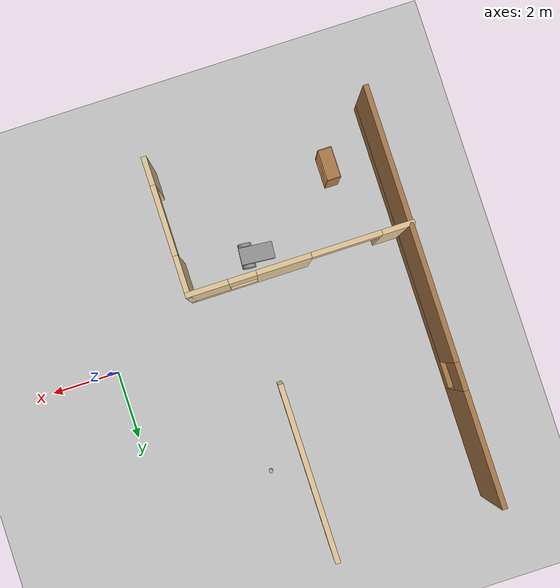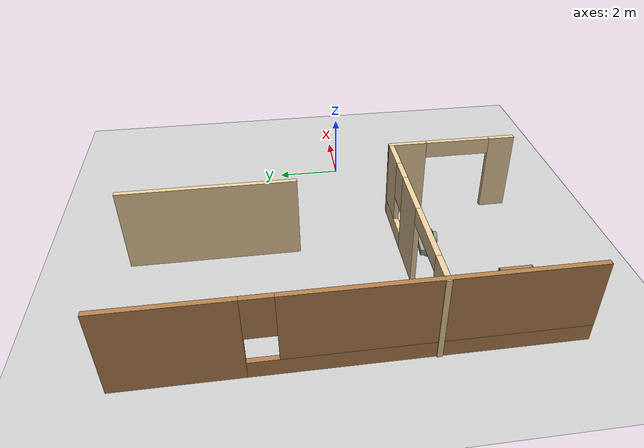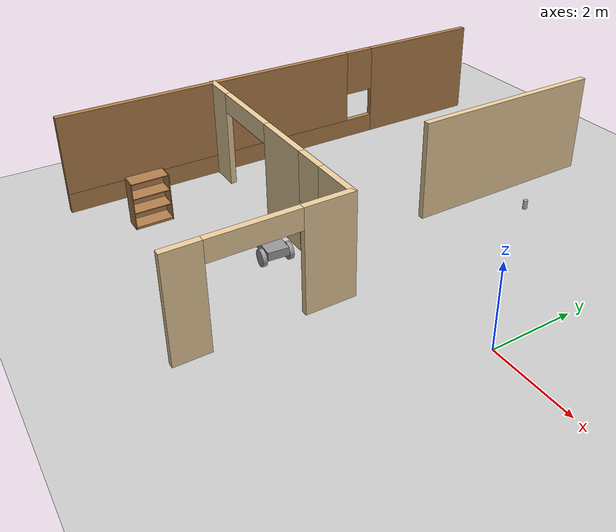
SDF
<sdf version="1.6">
 <world name="default">
  <model name="ground_plane">
   <static>1</static>
   <link name="link">
    <collision name="collision">
     <geometry><plane><normal>0 0 1</normal><size>100 100</size></plane></geometry>
     <surface><friction><ode><mu>100</mu><mu2>50</mu2></ode></friction></surface>
    </collision>
    <visual name="visual">
     <cast_shadows>0</cast_shadows>
     <geometry><plane><normal>0 0 1</normal><size>100 100</size></plane></geometry>
     <material>
      <script><uri>file://media/materials/scripts/gazebo.material</uri><name>Gazebo/Grey</name></script>
     </material>
    </visual>
   </link>
  </model>
  <model name="beer">
   <link name="link">
    <pose>0 0 0.115 0 -0 0</pose>
    <inertial>
     <mass>0.39</mass>
     <inertia><ixx>0.00058</ixx><ixy>0</ixy><ixz>0</ixz><iyy>0.00058</iyy><iyz>0</iyz><izz>0.00019</izz></inertia>
    </inertial>
    <collision name="collision">
     <geometry><cylinder><radius>0.055</radius><length>0.23</length></cylinder></geometry>
    </collision>
    <visual name="visual">
     <geometry><cylinder><radius>0.055</radius><length>0.23</length></cylinder></geometry>
     <material>
      <script>
       <uri>model://beer/materials/scripts</uri>
       <uri>model://beer/materials/textures</uri>
       <name>Beer/Diffuse</name>
      </script>
     </material>
    </visual>
   </link>
   <pose>-3.40388 4.09892 -2e-06 0 0 -9e-06</pose>
  </model>
  <model name="bookshelf">
   <link name="link">
    <pose>0 0 0 0 -0 1.5707</pose>
    <inertial>
     <mass>1</mass>
     <inertia><ixx>1</ixx><ixy>0</ixy><ixz>0</ixz><iyy>1</iyy><iyz>0</iyz><izz>1</izz></inertia>
    </inertial>
    <visual name="visual1">
     <pose>0 0.005 0.6 0 -0 0</pose>
     <geometry><box><size>0.9 0.01 1.2</size></box></geometry>
     <material>
      <script><uri>file://media/materials/scripts/gazebo.material</uri><name>Gazebo/Wood</name></script>
      <shader type="pixel"><normal_map>__default__</normal_map></shader>
      <ambient>1 1 1 1</ambient>
      <diffuse>1 1 1 1</diffuse>
      <specular>0.2 0.2 0.2 1</specular>
      <emissive>0 0 0 1</emissive>
     </material>
    </visual>
    <visual name="visual2">
     <pose>0.45 -0.195 0.6 0 -0 0</pose>
     <geometry><box><size>0.02 0.4 1.2</size></box></geometry>
     <material>
      <script><uri>file://media/materials/scripts/gazebo.material</uri><name>Gazebo/Wood</name></script>
      <shader type="pixel"><normal_map>__default__</normal_map></shader>
      <ambient>1 1 1 1</ambient>
      <diffuse>1 1 1 1</diffuse>
      <specular>0.2 0.2 0.2 1</specular>
      <emissive>0 0 0 1</emissive>
     </material>
    </visual>
    <visual name="visual3">
     <pose>-0.45 -0.195 0.6 0 -0 0</pose>
     <geometry><box><size>0.02 0.4 1.2</size></box></geometry>
     <material>
      <script><uri>file://media/materials/scripts/gazebo.material</uri><name>Gazebo/Wood</name></script>
      <shader type="pixel"><normal_map>__default__</normal_map></shader>
      <ambient>1 1 1 1</ambient>
      <diffuse>1 1 1 1</diffuse>
      <specular>0.2 0.2 0.2 1</specular>
      <emissive>0 0 0 1</emissive>
     </material>
    </visual>
    <visual name="visual4">
     <pose>0 -0.195 0.03 0 -0 0</pose>
     <geometry><box><size>0.88 0.4 0.06</size></box></geometry>
     <material>
      <script><uri>file://media/materials/scripts/gazebo.material</uri><name>Gazebo/Wood</name></script>
      <shader type="pixel"><normal_map>__default__</normal_map></shader>
      <ambient>1 1 1 1</ambient>
      <diffuse>1 1 1 1</diffuse>
      <specular>0.2 0.2 0.2 1</specular>
      <emissive>0 0 0 1</emissive>
     </material>
    </visual>
    <visual name="visual5">
     <pose>0 -0.195 1.19 0 -0 0</pose>
     <geometry><box><size>0.88 0.4 0.02</size></box></geometry>
     <material>
      <script><uri>file://media/materials/scripts/gazebo.material</uri><name>Gazebo/Wood</name></script>
      <shader type="pixel"><normal_map>__default__</normal_map></shader>
      <ambient>1 1 1 1</ambient>
      <diffuse>1 1 1 1</diffuse>
      <specular>0.2 0.2 0.2 1</specular>
      <emissive>0 0 0 1</emissive>
     </material>
    </visual>
    <visual name="visual6">
     <pose>0 -0.195 0.43 0 -0 0</pose>
     <geometry><box><size>0.88 0.4 0.02</size></box></geometry>
     <material>
      <script><uri>file://media/materials/scripts/gazebo.material</uri><name>Gazebo/Wood</name></script>
      <shader type="pixel"><normal_map>__default__</normal_map></shader>
      <ambient>1 1 1 1</ambient>
      <diffuse>1 1 1 1</diffuse>
      <specular>0.2 0.2 0.2 1</specular>
      <emissive>0 0 0 1</emissive>
     </material>
    </visual>
    <visual name="visual7">
     <pose>0 -0.195 0.8 0 -0 0</pose>
     <geometry><box><size>0.88 0.4 0.02</size></box></geometry>
     <material>
      <script><uri>file://media/materials/scripts/gazebo.material</uri><name>Gazebo/Wood</name></script>
      <shader type="pixel"><normal_map>__default__</normal_map></shader>
      <ambient>1 1 1 1</ambient>
      <diffuse>1 1 1 1</diffuse>
      <specular>0.2 0.2 0.2 1</specular>
      <emissive>0 0 0 1</emissive>
     </material>
    </visual>
    <collision name="back">
     <pose>0 0.005 0.6 0 -0 0</pose>
     <geometry><box><size>0.9 0.01 1.2</size></box></geometry>
     <surface>
      <friction>
       <ode><mu>1</mu><mu2>1</mu2><fdir1>0 0 0</fdir1><slip1>0</slip1><slip2>0</slip2></ode>
       <torsional>
        <coefficient>1</coefficient>
        <patch_radius>0</patch_radius>
        <surface_radius>0</surface_radius>
        <use_patch_radius>1</use_patch_radius>
        <ode><slip>0</slip></ode>
       </torsional>
      </friction>
      <bounce><restitution_coefficient>0</restitution_coefficient><threshold>1e+06</threshold></bounce>
      <contact>
       <collide_without_contact>0</collide_without_contact>
       <collide_without_contact_bitmask>1</collide_without_contact_bitmask>
       <collide_bitmask>1</collide_bitmask>
       <ode>
        <soft_cfm>0</soft_cfm>
        <soft_erp>0.2</soft_erp>
        <kp>1e+13</kp>
        <kd>1</kd>
        <max_vel>0.01</max_vel>
        <min_depth>0</min_depth>
       </ode>
       <bullet>
        <split_impulse>1</split_impulse>
        <split_impulse_penetration_threshold>-0.01</split_impulse_penetration_threshold>
        <soft_cfm>0</soft_cfm>
        <soft_erp>0.2</soft_erp>
        <kp>1e+13</kp>
        <kd>1</kd>
       </bullet>
      </contact>
     </surface>
    </collision>
    <collision name="left_side">
     <pose>0.45 -0.195 0.6 0 -0 0</pose>
     <geometry><box><size>0.02 0.4 1.2</size></box></geometry>
     <surface>
      <friction>
       <ode><mu>1</mu><mu2>1</mu2><fdir1>0 0 0</fdir1><slip1>0</slip1><slip2>0</slip2></ode>
       <torsional>
        <coefficient>1</coefficient>
        <patch_radius>0</patch_radius>
        <surface_radius>0</surface_radius>
        <use_patch_radius>1</use_patch_radius>
        <ode><slip>0</slip></ode>
       </torsional>
      </friction>
      <bounce><restitution_coefficient>0</restitution_coefficient><threshold>1e+06</threshold></bounce>
      <contact>
       <collide_without_contact>0</collide_without_contact>
       <collide_without_contact_bitmask>1</collide_without_contact_bitmask>
       <collide_bitmask>1</collide_bitmask>
       <ode>
        <soft_cfm>0</soft_cfm>
        <soft_erp>0.2</soft_erp>
        <kp>1e+13</kp>
        <kd>1</kd>
        <max_vel>0.01</max_vel>
        <min_depth>0</min_depth>
       </ode>
       <bullet>
        <split_impulse>1</split_impulse>
        <split_impulse_penetration_threshold>-0.01</split_impulse_penetration_threshold>
        <soft_cfm>0</soft_cfm>
        <soft_erp>0.2</soft_erp>
        <kp>1e+13</kp>
        <kd>1</kd>
       </bullet>
      </contact>
     </surface>
    </collision>
    <collision name="right_side">
     <pose>-0.45 -0.195 0.6 0 -0 0</pose>
     <geometry><box><size>0.02 0.4 1.2</size></box></geometry>
     <surface>
      <friction>
       <ode><mu>1</mu><mu2>1</mu2><fdir1>0 0 0</fdir1><slip1>0</slip1><slip2>0</slip2></ode>
       <torsional>
        <coefficient>1</coefficient>
        <patch_radius>0</patch_radius>
        <surface_radius>0</surface_radius>
        <use_patch_radius>1</use_patch_radius>
        <ode><slip>0</slip></ode>
       </torsional>
      </friction>
      <bounce><restitution_coefficient>0</restitution_coefficient><threshold>1e+06</threshold></bounce>
      <contact>
       <collide_without_contact>0</collide_without_contact>
       <collide_without_contact_bitmask>1</collide_without_contact_bitmask>
       <collide_bitmask>1</collide_bitmask>
       <ode>
        <soft_cfm>0</soft_cfm>
        <soft_erp>0.2</soft_erp>
        <kp>1e+13</kp>
        <kd>1</kd>
        <max_vel>0.01</max_vel>
        <min_depth>0</min_depth>
       </ode>
       <bullet>
        <split_impulse>1</split_impulse>
        <split_impulse_penetration_threshold>-0.01</split_impulse_penetration_threshold>
        <soft_cfm>0</soft_cfm>
        <soft_erp>0.2</soft_erp>
        <kp>1e+13</kp>
        <kd>1</kd>
       </bullet>
      </contact>
     </surface>
    </collision>
    <collision name="high_shelf">
     <pose>0 -0.195 0.8 0 -0 0</pose>
     <geometry><box><size>0.88 0.4 0.02</size></box></geometry>
     <surface>
      <friction>
       <ode><mu>1</mu><mu2>1</mu2><fdir1>0 0 0</fdir1><slip1>0</slip1><slip2>0</slip2></ode>
       <torsional>
        <coefficient>1</coefficient>
        <patch_radius>0</patch_radius>
        <surface_radius>0</surface_radius>
        <use_patch_radius>1</use_patch_radius>
        <ode><slip>0</slip></ode>
       </torsional>
      </friction>
      <bounce><restitution_coefficient>0</restitution_coefficient><threshold>1e+06</threshold></bounce>
      <contact>
       <collide_without_contact>0</collide_without_contact>
       <collide_without_contact_bitmask>1</collide_without_contact_bitmask>
       <collide_bitmask>1</collide_bitmask>
       <ode>
        <soft_cfm>0</soft_cfm>
        <soft_erp>0.2</soft_erp>
        <kp>1e+13</kp>
        <kd>1</kd>
        <max_vel>0.01</max_vel>
        <min_depth>0</min_depth>
       </ode>
       <bullet>
        <split_impulse>1</split_impulse>
        <split_impulse_penetration_threshold>-0.01</split_impulse_penetration_threshold>
        <soft_cfm>0</soft_cfm>
        <soft_erp>0.2</soft_erp>
        <kp>1e+13</kp>
        <kd>1</kd>
       </bullet>
      </contact>
     </surface>
    </collision>
    <collision name="bottom">
     <pose>0 -0.195 0.03 0 -0 0</pose>
     <geometry><box><size>0.88 0.4 0.06</size></box></geometry>
     <surface>
      <friction>
       <ode><mu>1</mu><mu2>1</mu2><fdir1>0 0 0</fdir1><slip1>0</slip1><slip2>0</slip2></ode>
       <torsional>
        <coefficient>1</coefficient>
        <patch_radius>0</patch_radius>
        <surface_radius>0</surface_radius>
        <use_patch_radius>1</use_patch_radius>
        <ode><slip>0</slip></ode>
       </torsional>
      </friction>
      <bounce><restitution_coefficient>0</restitution_coefficient><threshold>1e+06</threshold></bounce>
      <contact>
       <collide_without_contact>0</collide_without_contact>
       <collide_without_contact_bitmask>1</collide_without_contact_bitmask>
       <collide_bitmask>1</collide_bitmask>
       <ode>
        <soft_cfm>0</soft_cfm>
        <soft_erp>0.2</soft_erp>
        <kp>1e+13</kp>
        <kd>1</kd>
        <max_vel>0.01</max_vel>
        <min_depth>0</min_depth>
       </ode>
       <bullet>
        <split_impulse>1</split_impulse>
        <split_impulse_penetration_threshold>-0.01</split_impulse_penetration_threshold>
        <soft_cfm>0</soft_cfm>
        <soft_erp>0.2</soft_erp>
        <kp>1e+13</kp>
        <kd>1</kd>
       </bullet>
      </contact>
     </surface>
    </collision>
    <collision name="top">
     <pose>0 -0.195 1.19 0 -0 0</pose>
     <geometry><box><size>0.88 0.4 0.02</size></box></geometry>
     <surface>
      <friction>
       <ode><mu>1</mu><mu2>1</mu2><fdir1>0 0 0</fdir1><slip1>0</slip1><slip2>0</slip2></ode>
       <torsional>
        <coefficient>1</coefficient>
        <patch_radius>0</patch_radius>
        <surface_radius>0</surface_radius>
        <use_patch_radius>1</use_patch_radius>
        <ode><slip>0</slip></ode>
       </torsional>
      </friction>
      <bounce><restitution_coefficient>0</restitution_coefficient><threshold>1e+06</threshold></bounce>
      <contact>
       <collide_without_contact>0</collide_without_contact>
       <collide_without_contact_bitmask>1</collide_without_contact_bitmask>
       <collide_bitmask>1</collide_bitmask>
       <ode>
        <soft_cfm>0</soft_cfm>
        <soft_erp>0.2</soft_erp>
        <kp>1e+13</kp>
        <kd>1</kd>
        <max_vel>0.01</max_vel>
        <min_depth>0</min_depth>
       </ode>
       <bullet>
        <split_impulse>1</split_impulse>
        <split_impulse_penetration_threshold>-0.01</split_impulse_penetration_threshold>
        <soft_cfm>0</soft_cfm>
        <soft_erp>0.2</soft_erp>
        <kp>1e+13</kp>
        <kd>1</kd>
       </bullet>
      </contact>
     </surface>
    </collision>
    <collision name="low_shelf">
     <pose>0 -0.195 0.43 0 -0 0</pose>
     <geometry><box><size>0.88 0.4 0.02</size></box></geometry>
     <surface>
      <friction>
       <ode><mu>1</mu><mu2>1</mu2><fdir1>0 0 0</fdir1><slip1>0</slip1><slip2>0</slip2></ode>
       <torsional>
        <coefficient>1</coefficient>
        <patch_radius>0</patch_radius>
        <surface_radius>0</surface_radius>
        <use_patch_radius>1</use_patch_radius>
        <ode><slip>0</slip></ode>
       </torsional>
      </friction>
      <bounce><restitution_coefficient>0</restitution_coefficient><threshold>1e+06</threshold></bounce>
      <contact>
       <collide_without_contact>0</collide_without_contact>
       <collide_without_contact_bitmask>1</collide_without_contact_bitmask>
       <collide_bitmask>1</collide_bitmask>
       <ode>
        <soft_cfm>0</soft_cfm>
        <soft_erp>0.2</soft_erp>
        <kp>1e+13</kp>
        <kd>1</kd>
        <max_vel>0.01</max_vel>
        <min_depth>0</min_depth>
       </ode>
       <bullet>
        <split_impulse>1</split_impulse>
        <split_impulse_penetration_threshold>-0.01</split_impulse_penetration_threshold>
        <soft_cfm>0</soft_cfm>
        <soft_erp>0.2</soft_erp>
        <kp>1e+13</kp>
        <kd>1</kd>
       </bullet>
      </contact>
     </surface>
    </collision>
   </link>
   <static>1</static>
   <pose>-7.86837 -3.77974 0 0 -0 0</pose>
  </model>
  <model name="robot_1">
   <link name="link_0">
    <pose>0 0.015 0.1 0 -0 0</pose>
    <inertial>
     <mass>1</mass>
     <inertia>
      <ixx>0.166667</ixx>
      <ixy>0</ixy>
      <ixz>0</ixz>
      <iyy>0.166667</iyy>
      <iyz>0</iyz>
      <izz>0.166667</izz>
     </inertia>
    </inertial>
    <visual name="visual">
     <geometry><box><size>1 0.5 0.2</size></box></geometry>
     <material>
      <lighting>1</lighting>
      <script><uri>file://media/materials/scripts/gazebo.material</uri><name>Gazebo/Grey</name></script>
      <shader type="pixel"><normal_map>__default__</normal_map></shader>
      <ambient>0.3 0.3 0.3 1</ambient>
      <diffuse>0.7 0.7 0.7 1</diffuse>
      <specular>0.01 0.01 0.01 1</specular>
      <emissive>0 0 0 1</emissive>
     </material>
    </visual>
    <collision name="collision">
     <geometry><box><size>1 0.5 0.2</size></box></geometry>
     <surface>
      <friction>
       <ode><mu>1</mu><mu2>1</mu2><fdir1>0 0 0</fdir1><slip1>0</slip1><slip2>0</slip2></ode>
       <torsional>
        <coefficient>1</coefficient>
        <patch_radius>0</patch_radius>
        <surface_radius>0</surface_radius>
        <use_patch_radius>1</use_patch_radius>
        <ode><slip>0</slip></ode>
       </torsional>
      </friction>
      <bounce><restitution_coefficient>0</restitution_coefficient><threshold>1e+06</threshold></bounce>
      <contact>
       <collide_without_contact>0</collide_without_contact>
       <collide_without_contact_bitmask>1</collide_without_contact_bitmask>
       <collide_bitmask>1</collide_bitmask>
       <ode>
        <soft_cfm>0</soft_cfm>
        <soft_erp>0.2</soft_erp>
        <kp>1e+13</kp>
        <kd>1</kd>
        <max_vel>0.01</max_vel>
        <min_depth>0</min_depth>
       </ode>
       <bullet>
        <split_impulse>1</split_impulse>
        <split_impulse_penetration_threshold>-0.01</split_impulse_penetration_threshold>
        <soft_cfm>0</soft_cfm>
        <soft_erp>0.2</soft_erp>
        <kp>1e+13</kp>
        <kd>1</kd>
       </bullet>
      </contact>
     </surface>
    </collision>
   </link>
   <link name="link_0_0">
    <pose>-0.303762 0.015004 -0.03228 -6e-06 0.013869 -1.7e-05</pose>
    <inertial>
     <mass>1</mass>
     <inertia><ixx>0.1</ixx><ixy>0</ixy><ixz>0</ixz><iyy>0.1</iyy><iyz>0</iyz><izz>0.1</izz></inertia>
    </inertial>
    <visual name="visual">
     <geometry><sphere><radius>0.15</radius></sphere></geometry>
     <material>
      <lighting>1</lighting>
      <script><uri>file://media/materials/scripts/gazebo.material</uri><name>Gazebo/Grey</name></script>
      <shader type="pixel"><normal_map>__default__</normal_map></shader>
      <ambient>0.3 0.3 0.3 1</ambient>
      <diffuse>0.7 0.7 0.7 1</diffuse>
      <specular>0.01 0.01 0.01 1</specular>
      <emissive>0 0 0 1</emissive>
     </material>
    </visual>
    <collision name="collision">
     <geometry><sphere><radius>0.15</radius></sphere></geometry>
     <surface>
      <friction>
       <ode><mu>1</mu><mu2>1</mu2><fdir1>0 0 0</fdir1><slip1>0</slip1><slip2>0</slip2></ode>
       <torsional>
        <coefficient>1</coefficient>
        <patch_radius>0</patch_radius>
        <surface_radius>0</surface_radius>
        <use_patch_radius>1</use_patch_radius>
        <ode><slip>0</slip></ode>
       </torsional>
      </friction>
      <bounce><restitution_coefficient>0</restitution_coefficient><threshold>1e+06</threshold></bounce>
      <contact>
       <collide_without_contact>0</collide_without_contact>
       <collide_without_contact_bitmask>1</collide_without_contact_bitmask>
       <collide_bitmask>1</collide_bitmask>
       <ode>
        <soft_cfm>0</soft_cfm>
        <soft_erp>0.2</soft_erp>
        <kp>1e+13</kp>
        <kd>1</kd>
        <max_vel>0.01</max_vel>
        <min_depth>0</min_depth>
       </ode>
       <bullet>
        <split_impulse>1</split_impulse>
        <split_impulse_penetration_threshold>-0.01</split_impulse_penetration_threshold>
        <soft_cfm>0</soft_cfm>
        <soft_erp>0.2</soft_erp>
        <kp>1e+13</kp>
        <kd>1</kd>
       </bullet>
      </contact>
     </surface>
    </collision>
   </link>
   <link name="link_1">
    <pose>0.297167 -0.300036 -0.004123 1.5707 -0 0</pose>
    <inertial>
     <mass>1</mass>
     <inertia><ixx>0.145833</ixx><ixy>0</ixy><ixz>0</ixz><iyy>0.145833</iyy><iyz>0</iyz><izz>0.125</izz></inertia>
    </inertial>
    <visual name="visual">
     <geometry><cylinder><radius>0.2</radius><length>0.1</length></cylinder></geometry>
     <material>
      <lighting>1</lighting>
      <script><uri>file://media/materials/scripts/gazebo.material</uri><name>Gazebo/Grey</name></script>
      <shader type="pixel"><normal_map>__default__</normal_map></shader>
      <ambient>0.3 0.3 0.3 1</ambient>
      <diffuse>0.7 0.7 0.7 1</diffuse>
      <specular>0.01 0.01 0.01 1</specular>
      <emissive>0 0 0 1</emissive>
     </material>
    </visual>
    <collision name="collision">
     <geometry><cylinder><radius>0.2</radius><length>0.1</length></cylinder></geometry>
     <surface>
      <friction>
       <ode><mu>1</mu><mu2>1</mu2><fdir1>0 0 0</fdir1><slip1>0</slip1><slip2>0</slip2></ode>
       <torsional>
        <coefficient>1</coefficient>
        <patch_radius>0</patch_radius>
        <surface_radius>0</surface_radius>
        <use_patch_radius>1</use_patch_radius>
        <ode><slip>0</slip></ode>
       </torsional>
      </friction>
      <bounce><restitution_coefficient>0</restitution_coefficient><threshold>1e+06</threshold></bounce>
      <contact>
       <collide_without_contact>0</collide_without_contact>
       <collide_without_contact_bitmask>1</collide_without_contact_bitmask>
       <collide_bitmask>1</collide_bitmask>
       <ode>
        <soft_cfm>0</soft_cfm>
        <soft_erp>0.2</soft_erp>
        <kp>1e+13</kp>
        <kd>1</kd>
        <max_vel>0.01</max_vel>
        <min_depth>0</min_depth>
       </ode>
       <bullet>
        <split_impulse>1</split_impulse>
        <split_impulse_penetration_threshold>-0.01</split_impulse_penetration_threshold>
        <soft_cfm>0</soft_cfm>
        <soft_erp>0.2</soft_erp>
        <kp>1e+13</kp>
        <kd>1</kd>
       </bullet>
      </contact>
     </surface>
    </collision>
   </link>
   <link name="link_1_clone">
    <pose>0.297178 0.330449 -0.004121 1.5707 -0 0</pose>
    <inertial>
     <mass>1</mass>
     <inertia><ixx>0.145833</ixx><ixy>0</ixy><ixz>0</ixz><iyy>0.145833</iyy><iyz>0</iyz><izz>0.125</izz></inertia>
    </inertial>
    <visual name="visual">
     <geometry><cylinder><radius>0.2</radius><length>0.1</length></cylinder></geometry>
     <material>
      <lighting>1</lighting>
      <script><uri>file://media/materials/scripts/gazebo.material</uri><name>Gazebo/Grey</name></script>
      <shader type="pixel"><normal_map>__default__</normal_map></shader>
      <ambient>0.3 0.3 0.3 1</ambient>
      <diffuse>0.7 0.7 0.7 1</diffuse>
      <specular>0.01 0.01 0.01 1</specular>
      <emissive>0 0 0 1</emissive>
     </material>
    </visual>
    <collision name="collision">
     <geometry><cylinder><radius>0.2</radius><length>0.1</length></cylinder></geometry>
     <surface>
      <friction>
       <ode><mu>1</mu><mu2>1</mu2><fdir1>0 0 0</fdir1><slip1>0</slip1><slip2>0</slip2></ode>
       <torsional>
        <coefficient>1</coefficient>
        <patch_radius>0</patch_radius>
        <surface_radius>0</surface_radius>
        <use_patch_radius>1</use_patch_radius>
        <ode><slip>0</slip></ode>
       </torsional>
      </friction>
      <bounce><restitution_coefficient>0</restitution_coefficient><threshold>1e+06</threshold></bounce>
      <contact>
       <collide_without_contact>0</collide_without_contact>
       <collide_without_contact_bitmask>1</collide_without_contact_bitmask>
       <collide_bitmask>1</collide_bitmask>
       <ode>
        <soft_cfm>0</soft_cfm>
        <soft_erp>0.2</soft_erp>
        <kp>1e+13</kp>
        <kd>1</kd>
        <max_vel>0.01</max_vel>
        <min_depth>0</min_depth>
       </ode>
       <bullet>
        <split_impulse>1</split_impulse>
        <split_impulse_penetration_threshold>-0.01</split_impulse_penetration_threshold>
        <soft_cfm>0</soft_cfm>
        <soft_erp>0.2</soft_erp>
        <kp>1e+13</kp>
        <kd>1</kd>
       </bullet>
      </contact>
     </surface>
    </collision>
   </link>
   <joint name="link_0_JOINT_0" type="revolute">
    <parent>link_0</parent>
    <child>link_1</child>
    <axis>
     <xyz>0 0 1</xyz>
     <use_parent_model_frame>0</use_parent_model_frame>
     <limit>
      <lower>-1.79769e+308</lower>
      <upper>1.79769e+308</upper>
      <effort>-1</effort>
      <velocity>-1</velocity>
     </limit>
     <dynamics>
      <spring_reference>0</spring_reference>
      <spring_stiffness>0</spring_stiffness>
      <damping>0</damping>
      <friction>0</friction>
     </dynamics>
    </axis>
    <physics>
     <ode><limit><cfm>0</cfm><erp>0.2</erp></limit><suspension><cfm>0</cfm><erp>0.2</erp></suspension></ode>
    </physics>
   </joint>
   <joint name="link_0_JOINT_1" type="revolute">
    <parent>link_0</parent>
    <child>link_1_clone</child>
    <axis>
     <xyz>0 0 1</xyz>
     <use_parent_model_frame>0</use_parent_model_frame>
     <limit>
      <lower>-1.79769e+308</lower>
      <upper>1.79769e+308</upper>
      <effort>-1</effort>
      <velocity>-1</velocity>
     </limit>
     <dynamics>
      <spring_reference>0</spring_reference>
      <spring_stiffness>0</spring_stiffness>
      <damping>0</damping>
      <friction>0</friction>
     </dynamics>
    </axis>
    <physics>
     <ode><limit><cfm>0</cfm><erp>0.2</erp></limit><suspension><cfm>0</cfm><erp>0.2</erp></suspension></ode>
    </physics>
   </joint>
   <joint name="link_0_JOINT_2" type="ball">
    <parent>link_0</parent>
    <child>link_0_0</child>
    <physics>
     <ode><limit><cfm>0</cfm><erp>0.2</erp></limit><suspension><cfm>0</cfm><erp>0.2</erp></suspension></ode>
    </physics>
   </joint>
   <static>0</static>
   <pose>-4.95204 -2.08827 0.193309 -5e-06 -0.036386 -0.080218</pose>
  </model>
  <model name="mybuilding">
   <link name="Wall_25">
    <pose>-8.90711 0 0 0 0 -1.5708</pose>
    <visual name="Wall_25_Visual_0">
     <pose>-4.33953 0 1.25 0 -0 0</pose>
     <geometry><box><size>3.32095 0.15 2.5</size></box></geometry>
     <material>
      <script><uri>file://media/materials/scripts/gazebo.material</uri><name>Gazebo/Wood</name></script>
      <ambient>1 1 1 1</ambient>
      <shader type="pixel"/>
      <diffuse>1 1 1 1</diffuse>
      <specular>0.2 0.2 0.2 1</specular>
      <emissive>0 0 0 1</emissive>
     </material>
     <meta><layer>0</layer></meta>
    </visual>
    <visual name="Wall_25_Visual_1">
     <pose>1.66047 0 0.25 0 -0 0</pose>
     <geometry><box><size>8.67905 0.15 0.5</size></box></geometry>
     <material>
      <script><uri>file://media/materials/scripts/gazebo.material</uri><name>Gazebo/Wood</name></script>
      <ambient>1 1 1 1</ambient>
      <shader type="pixel"/>
      <diffuse>1 1 1 1</diffuse>
      <specular>0.2 0.2 0.2 1</specular>
      <emissive>0 0 0 1</emissive>
     </material>
     <meta><layer>0</layer></meta>
    </visual>
    <visual name="Wall_25_Visual_2">
     <pose>2.06047 0 1.5 0 -0 0</pose>
     <geometry><box><size>7.87905 0.15 2</size></box></geometry>
     <material>
      <script><uri>file://media/materials/scripts/gazebo.material</uri><name>Gazebo/Wood</name></script>
      <ambient>1 1 1 1</ambient>
      <shader type="pixel"/>
      <diffuse>1 1 1 1</diffuse>
      <specular>0.2 0.2 0.2 1</specular>
      <emissive>0 0 0 1</emissive>
     </material>
     <meta><layer>0</layer></meta>
    </visual>
    <visual name="Wall_25_Visual_3">
     <pose>-2.27905 0 1.9 0 -0 0</pose>
     <geometry><box><size>0.8 0.15 1.2</size></box></geometry>
     <material>
      <script><uri>file://media/materials/scripts/gazebo.material</uri><name>Gazebo/Wood</name></script>
      <ambient>1 1 1 1</ambient>
      <shader type="pixel"/>
      <diffuse>1 1 1 1</diffuse>
      <specular>0.2 0.2 0.2 1</specular>
      <emissive>0 0 0 1</emissive>
     </material>
     <meta><layer>0</layer></meta>
    </visual>
    <collision name="Wall_25_Collision_0">
     <pose>-4.33953 0 1.25 0 -0 0</pose>
     <geometry><box><size>3.32095 0.15 2.5</size></box></geometry>
     <surface>
      <friction>
       <ode><mu>1</mu><mu2>1</mu2><fdir1>0 0 0</fdir1><slip1>0</slip1><slip2>0</slip2></ode>
       <torsional>
        <coefficient>1</coefficient>
        <patch_radius>0</patch_radius>
        <surface_radius>0</surface_radius>
        <use_patch_radius>1</use_patch_radius>
        <ode><slip>0</slip></ode>
       </torsional>
      </friction>
      <bounce><restitution_coefficient>0</restitution_coefficient><threshold>1e+06</threshold></bounce>
      <contact>
       <collide_without_contact>0</collide_without_contact>
       <collide_without_contact_bitmask>1</collide_without_contact_bitmask>
       <collide_bitmask>1</collide_bitmask>
       <ode>
        <soft_cfm>0</soft_cfm>
        <soft_erp>0.2</soft_erp>
        <kp>1e+13</kp>
        <kd>1</kd>
        <max_vel>0.01</max_vel>
        <min_depth>0</min_depth>
       </ode>
       <bullet>
        <split_impulse>1</split_impulse>
        <split_impulse_penetration_threshold>-0.01</split_impulse_penetration_threshold>
        <soft_cfm>0</soft_cfm>
        <soft_erp>0.2</soft_erp>
        <kp>1e+13</kp>
        <kd>1</kd>
       </bullet>
      </contact>
     </surface>
    </collision>
    <collision name="Wall_25_Collision_1">
     <pose>1.66047 0 0.25 0 -0 0</pose>
     <geometry><box><size>8.67905 0.15 0.5</size></box></geometry>
     <surface>
      <friction>
       <ode><mu>1</mu><mu2>1</mu2><fdir1>0 0 0</fdir1><slip1>0</slip1><slip2>0</slip2></ode>
       <torsional>
        <coefficient>1</coefficient>
        <patch_radius>0</patch_radius>
        <surface_radius>0</surface_radius>
        <use_patch_radius>1</use_patch_radius>
        <ode><slip>0</slip></ode>
       </torsional>
      </friction>
      <bounce><restitution_coefficient>0</restitution_coefficient><threshold>1e+06</threshold></bounce>
      <contact>
       <collide_without_contact>0</collide_without_contact>
       <collide_without_contact_bitmask>1</collide_without_contact_bitmask>
       <collide_bitmask>1</collide_bitmask>
       <ode>
        <soft_cfm>0</soft_cfm>
        <soft_erp>0.2</soft_erp>
        <kp>1e+13</kp>
        <kd>1</kd>
        <max_vel>0.01</max_vel>
        <min_depth>0</min_depth>
       </ode>
       <bullet>
        <split_impulse>1</split_impulse>
        <split_impulse_penetration_threshold>-0.01</split_impulse_penetration_threshold>
        <soft_cfm>0</soft_cfm>
        <soft_erp>0.2</soft_erp>
        <kp>1e+13</kp>
        <kd>1</kd>
       </bullet>
      </contact>
     </surface>
    </collision>
    <collision name="Wall_25_Collision_2">
     <pose>2.06047 0 1.5 0 -0 0</pose>
     <geometry><box><size>7.87905 0.15 2</size></box></geometry>
     <surface>
      <friction>
       <ode><mu>1</mu><mu2>1</mu2><fdir1>0 0 0</fdir1><slip1>0</slip1><slip2>0</slip2></ode>
       <torsional>
        <coefficient>1</coefficient>
        <patch_radius>0</patch_radius>
        <surface_radius>0</surface_radius>
        <use_patch_radius>1</use_patch_radius>
        <ode><slip>0</slip></ode>
       </torsional>
      </friction>
      <bounce><restitution_coefficient>0</restitution_coefficient><threshold>1e+06</threshold></bounce>
      <contact>
       <collide_without_contact>0</collide_without_contact>
       <collide_without_contact_bitmask>1</collide_without_contact_bitmask>
       <collide_bitmask>1</collide_bitmask>
       <ode>
        <soft_cfm>0</soft_cfm>
        <soft_erp>0.2</soft_erp>
        <kp>1e+13</kp>
        <kd>1</kd>
        <max_vel>0.01</max_vel>
        <min_depth>0</min_depth>
       </ode>
       <bullet>
        <split_impulse>1</split_impulse>
        <split_impulse_penetration_threshold>-0.01</split_impulse_penetration_threshold>
        <soft_cfm>0</soft_cfm>
        <soft_erp>0.2</soft_erp>
        <kp>1e+13</kp>
        <kd>1</kd>
       </bullet>
      </contact>
     </surface>
    </collision>
    <collision name="Wall_25_Collision_3">
     <pose>-2.27905 0 1.9 0 -0 0</pose>
     <geometry><box><size>0.8 0.15 1.2</size></box></geometry>
     <surface>
      <friction>
       <ode><mu>1</mu><mu2>1</mu2><fdir1>0 0 0</fdir1><slip1>0</slip1><slip2>0</slip2></ode>
       <torsional>
        <coefficient>1</coefficient>
        <patch_radius>0</patch_radius>
        <surface_radius>0</surface_radius>
        <use_patch_radius>1</use_patch_radius>
        <ode><slip>0</slip></ode>
       </torsional>
      </friction>
      <bounce><restitution_coefficient>0</restitution_coefficient><threshold>1e+06</threshold></bounce>
      <contact>
       <collide_without_contact>0</collide_without_contact>
       <collide_without_contact_bitmask>1</collide_without_contact_bitmask>
       <collide_bitmask>1</collide_bitmask>
       <ode>
        <soft_cfm>0</soft_cfm>
        <soft_erp>0.2</soft_erp>
        <kp>1e+13</kp>
        <kd>1</kd>
        <max_vel>0.01</max_vel>
        <min_depth>0</min_depth>
       </ode>
       <bullet>
        <split_impulse>1</split_impulse>
        <split_impulse_penetration_threshold>-0.01</split_impulse_penetration_threshold>
        <soft_cfm>0</soft_cfm>
        <soft_erp>0.2</soft_erp>
        <kp>1e+13</kp>
        <kd>1</kd>
       </bullet>
      </contact>
     </surface>
    </collision>
   </link>
   <link name="Wall_31">
    <pose>-5.76789 -2.05427 0 0 -0 0</pose>
    <visual name="Wall_31_Visual_0">
     <pose>-2.78613 0 1.25 0 -0 0</pose>
     <geometry><box><size>0.92775 0.15 2.5</size></box></geometry>
     <material>
      <script><uri>file://media/materials/scripts/gazebo.material</uri><name>Gazebo/Grey</name></script>
      <ambient>0.921569 0.807843 0.615686 1</ambient>
      <shader type="pixel"/>
      <diffuse>0.7 0.7 0.7 1</diffuse>
      <specular>0.01 0.01 0.01 1</specular>
      <emissive>0 0 0 1</emissive>
     </material>
     <meta><layer>0</layer></meta>
    </visual>
    <visual name="Wall_31_Visual_1">
     <pose>0.455693 0 1.25 0 -0 0</pose>
     <geometry><box><size>1.55589 0.15 2.5</size></box></geometry>
     <material>
      <script><uri>file://media/materials/scripts/gazebo.material</uri><name>Gazebo/Grey</name></script>
      <ambient>0.921569 0.807843 0.615686 1</ambient>
      <shader type="pixel"/>
      <diffuse>0.7 0.7 0.7 1</diffuse>
      <specular>0.01 0.01 0.01 1</specular>
      <emissive>0 0 0 1</emissive>
     </material>
     <meta><layer>0</layer></meta>
    </visual>
    <visual name="Wall_31_Visual_2">
     <pose>2.24182 0 0.25 0 -0 0</pose>
     <geometry><box><size>2.01636 0.15 0.5</size></box></geometry>
     <material>
      <script><uri>file://media/materials/scripts/gazebo.material</uri><name>Gazebo/Grey</name></script>
      <ambient>0.921569 0.807843 0.615686 1</ambient>
      <shader type="pixel"/>
      <diffuse>0.7 0.7 0.7 1</diffuse>
      <specular>0.01 0.01 0.01 1</specular>
      <emissive>0 0 0 1</emissive>
     </material>
     <meta><layer>0</layer></meta>
    </visual>
    <visual name="Wall_31_Visual_3">
     <pose>2.64182 0 1.5 0 -0 0</pose>
     <geometry><box><size>1.21636 0.15 2</size></box></geometry>
     <material>
      <script><uri>file://media/materials/scripts/gazebo.material</uri><name>Gazebo/Grey</name></script>
      <ambient>0.921569 0.807843 0.615686 1</ambient>
      <shader type="pixel"/>
      <diffuse>0.7 0.7 0.7 1</diffuse>
      <specular>0.01 0.01 0.01 1</specular>
      <emissive>0 0 0 1</emissive>
     </material>
     <meta><layer>0</layer></meta>
    </visual>
    <visual name="Wall_31_Visual_4">
     <pose>1.63364 0 1.9 0 -0 0</pose>
     <geometry><box><size>0.8 0.15 1.2</size></box></geometry>
     <material>
      <script><uri>file://media/materials/scripts/gazebo.material</uri><name>Gazebo/Grey</name></script>
      <ambient>0.921569 0.807843 0.615686 1</ambient>
      <shader type="pixel"/>
      <diffuse>0.7 0.7 0.7 1</diffuse>
      <specular>0.01 0.01 0.01 1</specular>
      <emissive>0 0 0 1</emissive>
     </material>
     <meta><layer>0</layer></meta>
    </visual>
    <visual name="Wall_31_Visual_5">
     <pose>-1.32225 0 2.25 0 -0 0</pose>
     <geometry><box><size>2 0.15 0.5</size></box></geometry>
     <material>
      <script><uri>file://media/materials/scripts/gazebo.material</uri><name>Gazebo/Grey</name></script>
      <ambient>0.921569 0.807843 0.615686 1</ambient>
      <shader type="pixel"/>
      <diffuse>0.7 0.7 0.7 1</diffuse>
      <specular>0.01 0.01 0.01 1</specular>
      <emissive>0 0 0 1</emissive>
     </material>
     <meta><layer>0</layer></meta>
    </visual>
    <collision name="Wall_31_Collision_0">
     <pose>-2.78613 0 1.25 0 -0 0</pose>
     <geometry><box><size>0.92775 0.15 2.5</size></box></geometry>
     <surface>
      <friction>
       <ode><mu>1</mu><mu2>1</mu2><fdir1>0 0 0</fdir1><slip1>0</slip1><slip2>0</slip2></ode>
       <torsional>
        <coefficient>1</coefficient>
        <patch_radius>0</patch_radius>
        <surface_radius>0</surface_radius>
        <use_patch_radius>1</use_patch_radius>
        <ode><slip>0</slip></ode>
       </torsional>
      </friction>
      <bounce><restitution_coefficient>0</restitution_coefficient><threshold>1e+06</threshold></bounce>
      <contact>
       <collide_without_contact>0</collide_without_contact>
       <collide_without_contact_bitmask>1</collide_without_contact_bitmask>
       <collide_bitmask>1</collide_bitmask>
       <ode>
        <soft_cfm>0</soft_cfm>
        <soft_erp>0.2</soft_erp>
        <kp>1e+13</kp>
        <kd>1</kd>
        <max_vel>0.01</max_vel>
        <min_depth>0</min_depth>
       </ode>
       <bullet>
        <split_impulse>1</split_impulse>
        <split_impulse_penetration_threshold>-0.01</split_impulse_penetration_threshold>
        <soft_cfm>0</soft_cfm>
        <soft_erp>0.2</soft_erp>
        <kp>1e+13</kp>
        <kd>1</kd>
       </bullet>
      </contact>
     </surface>
    </collision>
    <collision name="Wall_31_Collision_1">
     <pose>0.455693 0 1.25 0 -0 0</pose>
     <geometry><box><size>1.55589 0.15 2.5</size></box></geometry>
     <surface>
      <friction>
       <ode><mu>1</mu><mu2>1</mu2><fdir1>0 0 0</fdir1><slip1>0</slip1><slip2>0</slip2></ode>
       <torsional>
        <coefficient>1</coefficient>
        <patch_radius>0</patch_radius>
        <surface_radius>0</surface_radius>
        <use_patch_radius>1</use_patch_radius>
        <ode><slip>0</slip></ode>
       </torsional>
      </friction>
      <bounce><restitution_coefficient>0</restitution_coefficient><threshold>1e+06</threshold></bounce>
      <contact>
       <collide_without_contact>0</collide_without_contact>
       <collide_without_contact_bitmask>1</collide_without_contact_bitmask>
       <collide_bitmask>1</collide_bitmask>
       <ode>
        <soft_cfm>0</soft_cfm>
        <soft_erp>0.2</soft_erp>
        <kp>1e+13</kp>
        <kd>1</kd>
        <max_vel>0.01</max_vel>
        <min_depth>0</min_depth>
       </ode>
       <bullet>
        <split_impulse>1</split_impulse>
        <split_impulse_penetration_threshold>-0.01</split_impulse_penetration_threshold>
        <soft_cfm>0</soft_cfm>
        <soft_erp>0.2</soft_erp>
        <kp>1e+13</kp>
        <kd>1</kd>
       </bullet>
      </contact>
     </surface>
    </collision>
    <collision name="Wall_31_Collision_2">
     <pose>2.24182 0 0.25 0 -0 0</pose>
     <geometry><box><size>2.01636 0.15 0.5</size></box></geometry>
     <surface>
      <friction>
       <ode><mu>1</mu><mu2>1</mu2><fdir1>0 0 0</fdir1><slip1>0</slip1><slip2>0</slip2></ode>
       <torsional>
        <coefficient>1</coefficient>
        <patch_radius>0</patch_radius>
        <surface_radius>0</surface_radius>
        <use_patch_radius>1</use_patch_radius>
        <ode><slip>0</slip></ode>
       </torsional>
      </friction>
      <bounce><restitution_coefficient>0</restitution_coefficient><threshold>1e+06</threshold></bounce>
      <contact>
       <collide_without_contact>0</collide_without_contact>
       <collide_without_contact_bitmask>1</collide_without_contact_bitmask>
       <collide_bitmask>1</collide_bitmask>
       <ode>
        <soft_cfm>0</soft_cfm>
        <soft_erp>0.2</soft_erp>
        <kp>1e+13</kp>
        <kd>1</kd>
        <max_vel>0.01</max_vel>
        <min_depth>0</min_depth>
       </ode>
       <bullet>
        <split_impulse>1</split_impulse>
        <split_impulse_penetration_threshold>-0.01</split_impulse_penetration_threshold>
        <soft_cfm>0</soft_cfm>
        <soft_erp>0.2</soft_erp>
        <kp>1e+13</kp>
        <kd>1</kd>
       </bullet>
      </contact>
     </surface>
    </collision>
    <collision name="Wall_31_Collision_3">
     <pose>2.64182 0 1.5 0 -0 0</pose>
     <geometry><box><size>1.21636 0.15 2</size></box></geometry>
     <surface>
      <friction>
       <ode><mu>1</mu><mu2>1</mu2><fdir1>0 0 0</fdir1><slip1>0</slip1><slip2>0</slip2></ode>
       <torsional>
        <coefficient>1</coefficient>
        <patch_radius>0</patch_radius>
        <surface_radius>0</surface_radius>
        <use_patch_radius>1</use_patch_radius>
        <ode><slip>0</slip></ode>
       </torsional>
      </friction>
      <bounce><restitution_coefficient>0</restitution_coefficient><threshold>1e+06</threshold></bounce>
      <contact>
       <collide_without_contact>0</collide_without_contact>
       <collide_without_contact_bitmask>1</collide_without_contact_bitmask>
       <collide_bitmask>1</collide_bitmask>
       <ode>
        <soft_cfm>0</soft_cfm>
        <soft_erp>0.2</soft_erp>
        <kp>1e+13</kp>
        <kd>1</kd>
        <max_vel>0.01</max_vel>
        <min_depth>0</min_depth>
       </ode>
       <bullet>
        <split_impulse>1</split_impulse>
        <split_impulse_penetration_threshold>-0.01</split_impulse_penetration_threshold>
        <soft_cfm>0</soft_cfm>
        <soft_erp>0.2</soft_erp>
        <kp>1e+13</kp>
        <kd>1</kd>
       </bullet>
      </contact>
     </surface>
    </collision>
    <collision name="Wall_31_Collision_5">
     <pose>-1.32225 0 2.25 0 -0 0</pose>
     <geometry><box><size>2 0.15 0.5</size></box></geometry>
     <surface>
      <friction>
       <ode><mu>1</mu><mu2>1</mu2><fdir1>0 0 0</fdir1><slip1>0</slip1><slip2>0</slip2></ode>
       <torsional>
        <coefficient>1</coefficient>
        <patch_radius>0</patch_radius>
        <surface_radius>0</surface_radius>
        <use_patch_radius>1</use_patch_radius>
        <ode><slip>0</slip></ode>
       </torsional>
      </friction>
      <bounce><restitution_coefficient>0</restitution_coefficient><threshold>1e+06</threshold></bounce>
      <contact>
       <collide_without_contact>0</collide_without_contact>
       <collide_without_contact_bitmask>1</collide_without_contact_bitmask>
       <collide_bitmask>1</collide_bitmask>
       <ode>
        <soft_cfm>0</soft_cfm>
        <soft_erp>0.2</soft_erp>
        <kp>1e+13</kp>
        <kd>1</kd>
        <max_vel>0.01</max_vel>
        <min_depth>0</min_depth>
       </ode>
       <bullet>
        <split_impulse>1</split_impulse>
        <split_impulse_penetration_threshold>-0.01</split_impulse_penetration_threshold>
        <soft_cfm>0</soft_cfm>
        <soft_erp>0.2</soft_erp>
        <kp>1e+13</kp>
        <kd>1</kd>
       </bullet>
      </contact>
     </surface>
    </collision>
    <collision name="Wall_31_Collision_4">
     <pose>1.63364 0 1.9 0 -0 0</pose>
     <geometry><box><size>0.8 0.15 1.2</size></box></geometry>
     <surface>
      <friction>
       <ode><mu>1</mu><mu2>1</mu2><fdir1>0 0 0</fdir1><slip1>0</slip1><slip2>0</slip2></ode>
       <torsional>
        <coefficient>1</coefficient>
        <patch_radius>0</patch_radius>
        <surface_radius>0</surface_radius>
        <use_patch_radius>1</use_patch_radius>
        <ode><slip>0</slip></ode>
       </torsional>
      </friction>
      <bounce><restitution_coefficient>0</restitution_coefficient><threshold>1e+06</threshold></bounce>
      <contact>
       <collide_without_contact>0</collide_without_contact>
       <collide_without_contact_bitmask>1</collide_without_contact_bitmask>
       <collide_bitmask>1</collide_bitmask>
       <ode>
        <soft_cfm>0</soft_cfm>
        <soft_erp>0.2</soft_erp>
        <kp>1e+13</kp>
        <kd>1</kd>
        <max_vel>0.01</max_vel>
        <min_depth>0</min_depth>
       </ode>
       <bullet>
        <split_impulse>1</split_impulse>
        <split_impulse_penetration_threshold>-0.01</split_impulse_penetration_threshold>
        <soft_cfm>0</soft_cfm>
        <soft_erp>0.2</soft_erp>
        <kp>1e+13</kp>
        <kd>1</kd>
       </bullet>
      </contact>
     </surface>
    </collision>
   </link>
   <link name="Wall_32">
    <pose>-2.59289 -3.97927 0 0 0 -1.5708</pose>
    <visual name="Wall_32_Visual_0">
     <pose>-1.40883 0 1.25 0 -0 0</pose>
     <geometry><box><size>1.18234 0.15 2.5</size></box></geometry>
     <material>
      <script><uri>file://media/materials/scripts/gazebo.material</uri><name>Gazebo/Grey</name></script>
      <ambient>0.921569 0.807843 0.615686 1</ambient>
      <shader type="pixel"/>
      <diffuse>0.7 0.7 0.7 1</diffuse>
      <specular>0.01 0.01 0.01 1</specular>
      <emissive>0 0 0 1</emissive>
     </material>
     <meta><layer>0</layer></meta>
    </visual>
    <visual name="Wall_32_Visual_1">
     <pose>1.59117 0 1.25 0 -0 0</pose>
     <geometry><box><size>0.817657 0.15 2.5</size></box></geometry>
     <material>
      <script><uri>file://media/materials/scripts/gazebo.material</uri><name>Gazebo/Grey</name></script>
      <ambient>0.921569 0.807843 0.615686 1</ambient>
      <shader type="pixel"/>
      <diffuse>0.7 0.7 0.7 1</diffuse>
      <specular>0.01 0.01 0.01 1</specular>
      <emissive>0 0 0 1</emissive>
     </material>
     <meta><layer>0</layer></meta>
    </visual>
    <visual name="Wall_32_Visual_2">
     <pose>0.182343 0 2.25 0 -0 0</pose>
     <geometry><box><size>2 0.15 0.5</size></box></geometry>
     <material>
      <script><uri>file://media/materials/scripts/gazebo.material</uri><name>Gazebo/Grey</name></script>
      <ambient>0.921569 0.807843 0.615686 1</ambient>
      <shader type="pixel"/>
      <diffuse>0.7 0.7 0.7 1</diffuse>
      <specular>0.01 0.01 0.01 1</specular>
      <emissive>0 0 0 1</emissive>
     </material>
     <meta><layer>0</layer></meta>
    </visual>
    <collision name="Wall_32_Collision_0">
     <pose>-1.40883 0 1.25 0 -0 0</pose>
     <geometry><box><size>1.18234 0.15 2.5</size></box></geometry>
     <surface>
      <friction>
       <ode><mu>1</mu><mu2>1</mu2><fdir1>0 0 0</fdir1><slip1>0</slip1><slip2>0</slip2></ode>
       <torsional>
        <coefficient>1</coefficient>
        <patch_radius>0</patch_radius>
        <surface_radius>0</surface_radius>
        <use_patch_radius>1</use_patch_radius>
        <ode><slip>0</slip></ode>
       </torsional>
      </friction>
      <bounce><restitution_coefficient>0</restitution_coefficient><threshold>1e+06</threshold></bounce>
      <contact>
       <collide_without_contact>0</collide_without_contact>
       <collide_without_contact_bitmask>1</collide_without_contact_bitmask>
       <collide_bitmask>1</collide_bitmask>
       <ode>
        <soft_cfm>0</soft_cfm>
        <soft_erp>0.2</soft_erp>
        <kp>1e+13</kp>
        <kd>1</kd>
        <max_vel>0.01</max_vel>
        <min_depth>0</min_depth>
       </ode>
       <bullet>
        <split_impulse>1</split_impulse>
        <split_impulse_penetration_threshold>-0.01</split_impulse_penetration_threshold>
        <soft_cfm>0</soft_cfm>
        <soft_erp>0.2</soft_erp>
        <kp>1e+13</kp>
        <kd>1</kd>
       </bullet>
      </contact>
     </surface>
    </collision>
    <collision name="Wall_32_Collision_1">
     <pose>1.59117 0 1.25 0 -0 0</pose>
     <geometry><box><size>0.817657 0.15 2.5</size></box></geometry>
     <surface>
      <friction>
       <ode><mu>1</mu><mu2>1</mu2><fdir1>0 0 0</fdir1><slip1>0</slip1><slip2>0</slip2></ode>
       <torsional>
        <coefficient>1</coefficient>
        <patch_radius>0</patch_radius>
        <surface_radius>0</surface_radius>
        <use_patch_radius>1</use_patch_radius>
        <ode><slip>0</slip></ode>
       </torsional>
      </friction>
      <bounce><restitution_coefficient>0</restitution_coefficient><threshold>1e+06</threshold></bounce>
      <contact>
       <collide_without_contact>0</collide_without_contact>
       <collide_without_contact_bitmask>1</collide_without_contact_bitmask>
       <collide_bitmask>1</collide_bitmask>
       <ode>
        <soft_cfm>0</soft_cfm>
        <soft_erp>0.2</soft_erp>
        <kp>1e+13</kp>
        <kd>1</kd>
        <max_vel>0.01</max_vel>
        <min_depth>0</min_depth>
       </ode>
       <bullet>
        <split_impulse>1</split_impulse>
        <split_impulse_penetration_threshold>-0.01</split_impulse_penetration_threshold>
        <soft_cfm>0</soft_cfm>
        <soft_erp>0.2</soft_erp>
        <kp>1e+13</kp>
        <kd>1</kd>
       </bullet>
      </contact>
     </surface>
    </collision>
    <collision name="Wall_32_Collision_2">
     <pose>0.182343 0 2.25 0 -0 0</pose>
     <geometry><box><size>2 0.15 0.5</size></box></geometry>
     <surface>
      <friction>
       <ode><mu>1</mu><mu2>1</mu2><fdir1>0 0 0</fdir1><slip1>0</slip1><slip2>0</slip2></ode>
       <torsional>
        <coefficient>1</coefficient>
        <patch_radius>0</patch_radius>
        <surface_radius>0</surface_radius>
        <use_patch_radius>1</use_patch_radius>
        <ode><slip>0</slip></ode>
       </torsional>
      </friction>
      <bounce><restitution_coefficient>0</restitution_coefficient><threshold>1e+06</threshold></bounce>
      <contact>
       <collide_without_contact>0</collide_without_contact>
       <collide_without_contact_bitmask>1</collide_without_contact_bitmask>
       <collide_bitmask>1</collide_bitmask>
       <ode>
        <soft_cfm>0</soft_cfm>
        <soft_erp>0.2</soft_erp>
        <kp>1e+13</kp>
        <kd>1</kd>
        <max_vel>0.01</max_vel>
        <min_depth>0</min_depth>
       </ode>
       <bullet>
        <split_impulse>1</split_impulse>
        <split_impulse_penetration_threshold>-0.01</split_impulse_penetration_threshold>
        <soft_cfm>0</soft_cfm>
        <soft_erp>0.2</soft_erp>
        <kp>1e+13</kp>
        <kd>1</kd>
       </bullet>
      </contact>
     </surface>
    </collision>
   </link>
   <link name="Wall_35">
    <pose>-4.2276 3.49443 0 0 0 -1.5708</pose>
    <visual name="Wall_35_Visual">
     <pose>0 0 1.25 0 -0 0</pose>
     <geometry><box><size>5 0.15 2.5</size></box></geometry>
     <material>
      <script><uri>file://media/materials/scripts/gazebo.material</uri><name>Gazebo/Grey</name></script>
      <ambient>0.921569 0.807843 0.615686 1</ambient>
      <shader type="pixel"/>
      <diffuse>0.7 0.7 0.7 1</diffuse>
      <specular>0.01 0.01 0.01 1</specular>
      <emissive>0 0 0 1</emissive>
     </material>
     <meta><layer>0</layer></meta>
    </visual>
    <collision name="Wall_35_Collision">
     <pose>0 0 1.25 0 -0 0</pose>
     <geometry><box><size>5 0.15 2.5</size></box></geometry>
     <surface>
      <friction>
       <ode><mu>1</mu><mu2>1</mu2><fdir1>0 0 0</fdir1><slip1>0</slip1><slip2>0</slip2></ode>
       <torsional>
        <coefficient>1</coefficient>
        <patch_radius>0</patch_radius>
        <surface_radius>0</surface_radius>
        <use_patch_radius>1</use_patch_radius>
        <ode><slip>0</slip></ode>
       </torsional>
      </friction>
      <bounce><restitution_coefficient>0</restitution_coefficient><threshold>1e+06</threshold></bounce>
      <contact>
       <collide_without_contact>0</collide_without_contact>
       <collide_without_contact_bitmask>1</collide_without_contact_bitmask>
       <collide_bitmask>1</collide_bitmask>
       <ode>
        <soft_cfm>0</soft_cfm>
        <soft_erp>0.2</soft_erp>
        <kp>1e+13</kp>
        <kd>1</kd>
        <max_vel>0.01</max_vel>
        <min_depth>0</min_depth>
       </ode>
       <bullet>
        <split_impulse>1</split_impulse>
        <split_impulse_penetration_threshold>-0.01</split_impulse_penetration_threshold>
        <soft_cfm>0</soft_cfm>
        <soft_erp>0.2</soft_erp>
        <kp>1e+13</kp>
        <kd>1</kd>
       </bullet>
      </contact>
     </surface>
    </collision>
   </link>
   <static>1</static>
   <pose>-0.19515 0.703021 0 0 -0 0</pose>
  </model>
 </world>
</sdf>
